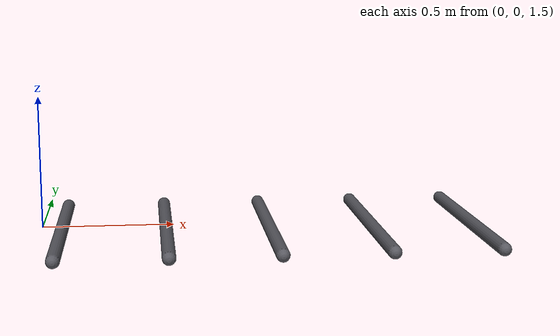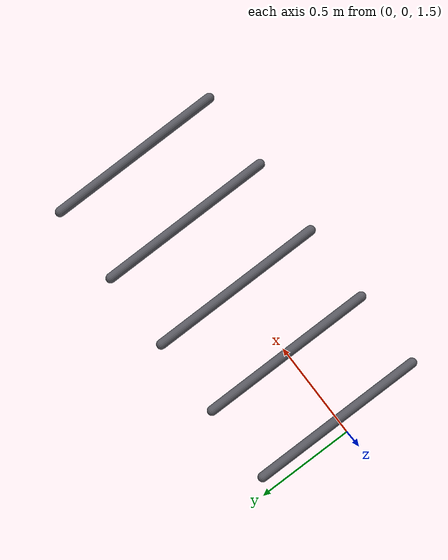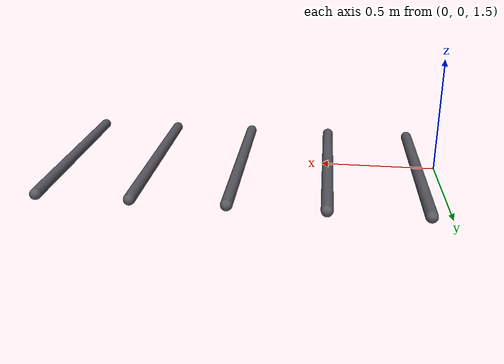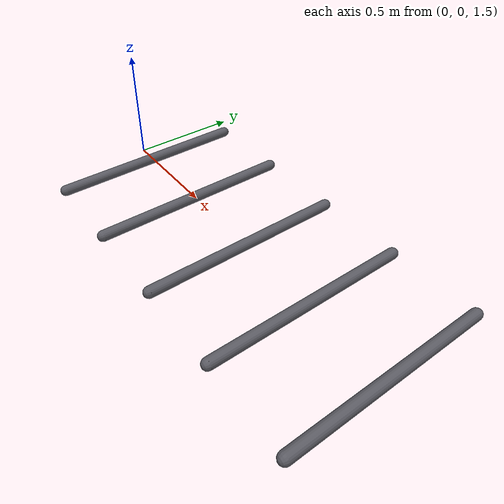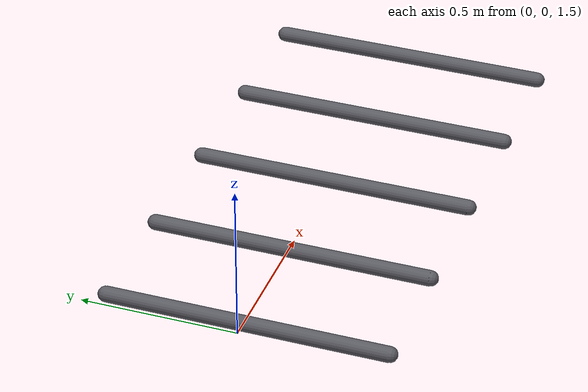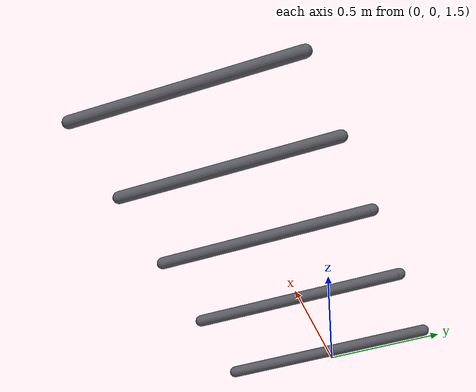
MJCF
<mujoco model="g1_29dof_with_hand_rev_1_0">
  <compiler angle="radian" meshdir="menagerie/unitree_g1/assets/"/>

  <option integrator="implicitfast" cone="elliptic" iterations="50" ls_iterations="20"/>

  <size nkey="2"/>

  <default>
    <default class="g1">
      <joint armature="0.01" frictionloss="0.3"/>
      <site size="0.01 0.005 0.005" group="5" rgba="1 0 0 1"/>
      <general biastype="affine" gainprm="500" biasprm="0 -500 1"/>
      <default class="visual">
        <geom type="mesh" contype="0" conaffinity="0" group="2" density="0" material="metal"/>
      </default>
      <default class="collision">
        <geom type="mesh" group="3"/>
        <default class="foot">
          <geom size="0.005 0 0" type="sphere" priority="1" friction="0.6"/>
        </default>
      </default>
    </default>
  </default>

  <asset>
    <material name="black" rgba="0.2 0.2 0.2 1"/>
    <material name="metal" rgba="0.7 0.7 0.7 1"/>
    <mesh name="pelvis" content_type="model/stl" file="pelvis.STL"/>
    <mesh name="pelvis_contour_link" content_type="model/stl" file="pelvis_contour_link.STL"/>
    <mesh name="left_hip_pitch_link" content_type="model/stl" file="left_hip_pitch_link.STL"/>
    <mesh name="left_hip_roll_link" content_type="model/stl" file="left_hip_roll_link.STL"/>
    <mesh name="left_hip_yaw_link" content_type="model/stl" file="left_hip_yaw_link.STL"/>
    <mesh name="left_knee_link" content_type="model/stl" file="left_knee_link.STL"/>
    <mesh name="left_ankle_pitch_link" content_type="model/stl" file="left_ankle_pitch_link.STL"/>
    <mesh name="left_ankle_roll_link" content_type="model/stl" file="left_ankle_roll_link.STL"/>
    <mesh name="right_hip_pitch_link" content_type="model/stl" file="right_hip_pitch_link.STL"/>
    <mesh name="right_hip_roll_link" content_type="model/stl" file="right_hip_roll_link.STL"/>
    <mesh name="right_hip_yaw_link" content_type="model/stl" file="right_hip_yaw_link.STL"/>
    <mesh name="right_knee_link" content_type="model/stl" file="right_knee_link.STL"/>
    <mesh name="right_ankle_pitch_link" content_type="model/stl" file="right_ankle_pitch_link.STL"/>
    <mesh name="right_ankle_roll_link" content_type="model/stl" file="right_ankle_roll_link.STL"/>
    <mesh name="waist_yaw_link" content_type="model/stl" file="waist_yaw_link_rev_1_0.STL"/>
    <mesh name="waist_roll_link" content_type="model/stl" file="waist_roll_link_rev_1_0.STL"/>
    <mesh name="torso_link" content_type="model/stl" file="torso_link_rev_1_0.STL"/>
    <mesh name="logo_link" content_type="model/stl" file="logo_link.STL"/>
    <mesh name="head_link" content_type="model/stl" file="head_link.STL"/>
    <mesh name="left_shoulder_pitch_link" content_type="model/stl" file="left_shoulder_pitch_link.STL"/>
    <mesh name="left_shoulder_roll_link" content_type="model/stl" file="left_shoulder_roll_link.STL"/>
    <mesh name="left_shoulder_yaw_link" content_type="model/stl" file="left_shoulder_yaw_link.STL"/>
    <mesh name="left_elbow_link" content_type="model/stl" file="left_elbow_link.STL"/>
    <mesh name="left_wrist_roll_link" content_type="model/stl" file="left_wrist_roll_link.STL"/>
    <mesh name="left_wrist_pitch_link" content_type="model/stl" file="left_wrist_pitch_link.STL"/>
    <mesh name="left_wrist_yaw_link" content_type="model/stl" file="left_wrist_yaw_link.STL"/>
    <mesh name="left_hand_palm_link" content_type="model/stl" file="left_hand_palm_link.STL"/>
    <mesh name="left_hand_thumb_0_link" content_type="model/stl" file="left_hand_thumb_0_link.STL"/>
    <mesh name="left_hand_thumb_1_link" content_type="model/stl" file="left_hand_thumb_1_link.STL"/>
    <mesh name="left_hand_thumb_2_link" content_type="model/stl" file="left_hand_thumb_2_link.STL"/>
    <mesh name="left_hand_middle_0_link" content_type="model/stl" file="left_hand_middle_0_link.STL"/>
    <mesh name="left_hand_middle_1_link" content_type="model/stl" file="left_hand_middle_1_link.STL"/>
    <mesh name="left_hand_index_0_link" content_type="model/stl" file="left_hand_index_0_link.STL"/>
    <mesh name="left_hand_index_1_link" content_type="model/stl" file="left_hand_index_1_link.STL"/>
    <mesh name="right_shoulder_pitch_link" content_type="model/stl" file="right_shoulder_pitch_link.STL"/>
    <mesh name="right_shoulder_roll_link" content_type="model/stl" file="right_shoulder_roll_link.STL"/>
    <mesh name="right_shoulder_yaw_link" content_type="model/stl" file="right_shoulder_yaw_link.STL"/>
    <mesh name="right_elbow_link" content_type="model/stl" file="right_elbow_link.STL"/>
    <mesh name="right_wrist_roll_link" content_type="model/stl" file="right_wrist_roll_link.STL"/>
    <mesh name="right_wrist_pitch_link" content_type="model/stl" file="right_wrist_pitch_link.STL"/>
    <mesh name="right_wrist_yaw_link" content_type="model/stl" file="right_wrist_yaw_link.STL"/>
    <mesh name="right_hand_palm_link" content_type="model/stl" file="right_hand_palm_link.STL"/>
    <mesh name="right_hand_thumb_0_link" content_type="model/stl" file="right_hand_thumb_0_link.STL"/>
    <mesh name="right_hand_thumb_1_link" content_type="model/stl" file="right_hand_thumb_1_link.STL"/>
    <mesh name="right_hand_thumb_2_link" content_type="model/stl" file="right_hand_thumb_2_link.STL"/>
    <mesh name="right_hand_middle_0_link" content_type="model/stl" file="right_hand_middle_0_link.STL"/>
    <mesh name="right_hand_middle_1_link" content_type="model/stl" file="right_hand_middle_1_link.STL"/>
    <mesh name="right_hand_index_0_link" content_type="model/stl" file="right_hand_index_0_link.STL"/>
    <mesh name="right_hand_index_1_link" content_type="model/stl" file="right_hand_index_1_link.STL"/>
  </asset>

  <worldbody>
    <body name="pelvis" childclass="g1" pos="0 0 0.793">
      <inertial pos="0 0 -0.07605" quat="1 0 -0.000399148 0" mass="3.813" diaginertia="0.010549 0.0093089 0.0079184"/>
      <joint name="floating_base_joint" type="free" armature="0" frictionloss="0"/>
      <geom class="collision" size="0.0294035 0.00728933" pos="0.0304304 0.0339377 -0.051962" quat="0.706852 -0.00891182 -0.00777612 0.707263" type="capsule"/>
      <site name="imu_in_pelvis" pos="0.04525 0 -0.08339"/>
      <body name="left_hip_pitch_link" pos="0 0.064452 -0.1027">
        <inertial pos="0.002741 0.047791 -0.02606" quat="0.954862 0.293964 0.0302556 0.030122" mass="1.35" diaginertia="0.00181517 0.00153422 0.00116212"/>
        <joint name="left_hip_pitch_joint" range="-2.5307 2.8798" actuatorfrcrange="-88 88" axis="0 1 0"/>
        <geom class="collision" size="0.01967 0.00852554" pos="0.0125873 0.0454484 0.0208359" quat="0.945633 0.315493 -0.0450108 0.0649417" type="capsule"/>
        <body name="left_hip_roll_link" pos="0 0.052 -0.030465" quat="0.996179 0 -0.0873386 0">
          <inertial pos="0.029812 -0.001045 -0.087934" quat="0.977808 -1.97119e-05 0.205576 -0.0403793" mass="1.52" diaginertia="0.00254986 0.00241169 0.00148755"/>
          <joint name="left_hip_roll_joint" range="-0.5236 2.9671" actuatorfrcrange="-139 139" axis="1 0 0"/>
          <geom class="collision" size="0.0245408 0.0124466" pos="0.0819322 0.0239031 -0.027932" quat="0.984423 -0.0038236 0.175642 -0.00685285" type="capsule"/>
          <body name="left_hip_yaw_link" pos="0.025001 0 -0.12412">
            <inertial pos="-0.057709 -0.010981 -0.15078" quat="0.600598 0.15832 0.223482 0.751181" mass="1.702" diaginertia="0.00776166 0.00717575 0.00160139"/>
            <joint name="left_hip_yaw_joint" range="-2.7576 2.7576" actuatorfrcrange="-88 88"/>
            <geom class="collision" size="0.0223399 0.050877" pos="-0.0319811 0.0195597 -0.0259532" quat="0.667927 0.152344 0.173167 0.707586" type="capsule"/>
            <body name="left_knee_link" pos="-0.078273 0.0021489 -0.17734" quat="0.996179 0 0.0873386 0">
              <inertial pos="0.005457 0.003964 -0.12074" quat="0.923418 -0.0327699 0.0158246 0.382067" mass="1.932" diaginertia="0.0113804 0.0112778 0.00146458"/>
              <joint name="left_knee_joint" range="-0.087267 2.8798" actuatorfrcrange="-139 139" axis="0 1 0"/>
              <geom class="collision" size="0.023851 0.0725401" pos="-0.011146 0.0292246 -0.0418017" quat="0.758488 -0.0138235 0.0293891 0.650877" type="capsule"/>
              <body name="left_ankle_pitch_link" pos="0 -9.4445e-05 -0.30001">
                <inertial pos="-0.007269 0 0.011137" quat="0.603053 0.369225 0.369225 0.603053" mass="0.074" diaginertia="1.89e-05 1.40805e-05 6.9195e-06"/>
                <joint name="left_ankle_pitch_joint" range="-0.87267 0.5236" actuatorfrcrange="-50 50" axis="0 1 0"/>
                <geom class="collision" size="0.005 0.00864362" pos="-0.00456871 0.00330835 0.00533139" quat="0.67667 0.205225 0.205225 0.67667" type="capsule"/>
                <body name="left_ankle_roll_link" pos="0 0 -0.017558">
                  <inertial pos="0.026505 0 -0.016425" quat="-0.000481092 0.728482 -0.000618967 0.685065" mass="0.608" diaginertia="0.00167218 0.0016161 0.000217621"/>
                  <joint name="left_ankle_roll_joint" range="-0.2618 0.2618" actuatorfrcrange="-50 50" axis="1 0 0"/>
                  <geom class="foot" pos="-0.05 0.025 -0.03"/>
                  <geom class="foot" pos="-0.05 -0.025 -0.03"/>
                  <geom class="foot" pos="0.12 0.03 -0.03"/>
                  <geom class="foot" pos="0.12 -0.03 -0.03"/>
                  <site name="left_foot"/>
                </body>
              </body>
            </body>
          </body>
        </body>
      </body>
      <body name="right_hip_pitch_link" pos="0 -0.064452 -0.1027">
        <inertial pos="0.002741 -0.047791 -0.02606" quat="0.954862 -0.293964 0.0302556 -0.030122" mass="1.35" diaginertia="0.00181517 0.00153422 0.00116212"/>
        <joint name="right_hip_pitch_joint" range="-2.5307 2.8798" actuatorfrcrange="-88 88" axis="0 1 0"/>
        <geom class="collision" size="0.0196703 0.0085253" pos="0.0202224 -0.00544519 -0.00898912" quat="0.945623 -0.315513 -0.0450217 -0.064969" type="capsule"/>
        <body name="right_hip_roll_link" pos="0 -0.052 -0.030465" quat="0.996179 0 -0.0873386 0">
          <inertial pos="0.029812 0.001045 -0.087934" quat="0.977808 1.97119e-05 0.205576 0.0403793" mass="1.52" diaginertia="0.00254986 0.00241169 0.00148755"/>
          <joint name="right_hip_roll_joint" range="-2.9671 0.5236" actuatorfrcrange="-139 139" axis="1 0 0"/>
          <geom class="collision" size="0.0244311 0.0125568" pos="0.0813464 0.025047 -0.0274485" quat="0.984424 0.00379079 0.175644 0.00665538" type="capsule"/>
          <body name="right_hip_yaw_link" pos="0.025001 0 -0.12412">
            <inertial pos="-0.057709 0.010981 -0.15078" quat="0.751181 0.223482 0.15832 0.600598" mass="1.702" diaginertia="0.00776166 0.00717575 0.00160139"/>
            <joint name="right_hip_yaw_joint" range="-2.7576 2.7576" actuatorfrcrange="-88 88"/>
            <geom class="collision" size="0.0217035 0.0515128" pos="-0.029279 0.0243969 -0.0252617" quat="0.707622 0.173154 0.152355 0.66789" type="capsule"/>
            <body name="right_knee_link" pos="-0.078273 -0.0021489 -0.17734" quat="0.996179 0 0.0873386 0">
              <inertial pos="0.005457 -0.003964 -0.12074" quat="0.923439 0.0345276 0.0116333 -0.382012" mass="1.932" diaginertia="0.011374 0.0112843 0.00146452"/>
              <joint name="right_knee_joint" range="-0.087267 2.8798" actuatorfrcrange="-139 139" axis="0 1 0"/>
              <geom class="collision" size="0.0175363 0.0788535" pos="-0.0173977 0.0116045 -0.0392136" quat="0.650834 0.0293804 -0.0138194 0.758526" type="capsule"/>
              <body name="right_ankle_pitch_link" pos="0 9.4445e-05 -0.30001">
                <inertial pos="-0.007269 0 0.011137" quat="0.603053 0.369225 0.369225 0.603053" mass="0.074" diaginertia="1.89e-05 1.40805e-05 6.9195e-06"/>
                <joint name="right_ankle_pitch_joint" range="-0.87267 0.5236" actuatorfrcrange="-50 50" axis="0 1 0"/>
                <geom class="collision" size="0.005 0.00864441" pos="-0.0045702 0.00319155 0.00533153" quat="0.676681 0.205189 0.205189 0.676681" type="capsule"/>
                <body name="right_ankle_roll_link" pos="0 0 -0.017558">
                  <inertial pos="0.026505 0 -0.016425" quat="0.000481092 0.728482 0.000618967 0.685065" mass="0.608" diaginertia="0.00167218 0.0016161 0.000217621"/>
                  <joint name="right_ankle_roll_joint" range="-0.2618 0.2618" actuatorfrcrange="-50 50" axis="1 0 0"/>
                  <geom class="foot" pos="-0.05 0.025 -0.03"/>
                  <geom class="foot" pos="-0.05 -0.025 -0.03"/>
                  <geom class="foot" pos="0.12 0.03 -0.03"/>
                  <geom class="foot" pos="0.12 -0.03 -0.03"/>
                  <site name="right_foot"/>
                </body>
              </body>
            </body>
          </body>
        </body>
      </body>
      <body name="waist_yaw_link">
        <inertial pos="0.003494 0.000233 0.018034" quat="0.289697 0.591001 -0.337795 0.672821" mass="0.214" diaginertia="0.000163531 0.000107714 0.000102205"/>
        <joint name="waist_yaw_joint" range="-2.618 2.618" actuatorfrcrange="-88 88"/>
        <body name="waist_roll_link" pos="-0.0039635 0 0.044">
          <inertial pos="0 2.3e-05 0" quat="0.5 0.5 -0.5 0.5" mass="0.086" diaginertia="8.245e-06 7.079e-06 6.339e-06"/>
          <joint name="waist_roll_joint" range="-0.52 0.52" actuatorfrcrange="-50 50" axis="1 0 0"/>
          <body name="torso_link">
            <inertial pos="0.00203158 0.000339683 0.184568" quat="0.999803 -6.03319e-05 0.0198256 0.00131986" mass="7.818" diaginertia="0.121847 0.109825 0.0273735"/>
            <joint name="waist_pitch_joint" range="-0.52 0.52" actuatorfrcrange="-50 50" axis="0 1 0"/>
            <geom class="collision" size="0.0360493 0.0422094" pos="0.0446263 0.0549016 0.22954" quat="0.999986 0.00188803 0.00455224 0.00209679" type="capsule"/>
            <geom class="collision" size="0.0360009 0.0172889" pos="0.04358 0.0389224 0.434194" quat="0.99974 1.33274e-05 0.0227938 5.45395e-05" type="capsule"/>
            <site name="imu_in_torso" pos="-0.03959 -0.00224 0.14792"/>
            <body name="left_shoulder_pitch_link" pos="0.0039563 0.10022 0.24778" quat="0.990264 0.139201 1.38722e-05 -9.86868e-05">
              <inertial pos="0 0.035892 -0.011628" quat="0.654152 0.0130458 -0.326267 0.68225" mass="0.718" diaginertia="0.000465864 0.000432842 0.000406394"/>
              <joint name="left_shoulder_pitch_joint" range="-3.0892 2.6704" actuatorfrcrange="-25 25" axis="0 1 0"/>
              <geom class="collision" size="0.03 0.025" pos="0 0.04 -0.01" quat="0.707107 0 0.707107 0" type="capsule"/>
              <body name="left_shoulder_roll_link" pos="0 0.038 -0.013831" quat="0.990268 -0.139172 0 0">
                <inertial pos="-0.000227 0.00727 -0.063243" quat="0.701256 -0.0196223 -0.00710317 0.712604" mass="0.643" diaginertia="0.000691311 0.000618011 0.000388977"/>
                <joint name="left_shoulder_roll_joint" range="-1.5882 2.2515" actuatorfrcrange="-25 25" axis="1 0 0"/>
                <geom class="collision" size="0.03 0.015" pos="-0.004 0.006 -0.053" type="capsule"/>
                <body name="left_shoulder_yaw_link" pos="0 0.00624 -0.1032">
                  <inertial pos="0.010773 -0.002949 -0.072009" quat="0.716879 -0.0964829 -0.0679942 0.687134" mass="0.734" diaginertia="0.00106187 0.00103217 0.000400661"/>
                  <joint name="left_shoulder_yaw_joint" range="-2.618 2.618" actuatorfrcrange="-25 25"/>
                  <geom class="collision" size="0.0187489 0.0152872" pos="-0.0253629 0.0150278 -0.0132182" quat="0.659095 -0.127992 -0.0438299 0.739791" type="capsule"/>
                  <body name="left_elbow_link" pos="0.015783 0 -0.080518">
                    <inertial pos="0.064956 0.004454 -0.010062" quat="0.541765 0.636132 0.388821 0.388129" mass="0.6" diaginertia="0.000443035 0.000421612 0.000259353"/>
                    <joint name="left_elbow_joint" range="-1.0472 2.0944" actuatorfrcrange="-25 25" axis="0 1 0"/>
                    <geom class="collision" size="0.0183316 0.024211" pos="0.0866213 0.0151241 0.0068068" quat="0.52961 0.619007 0.416619 0.403449" type="capsule"/>
                    <body name="left_wrist_roll_link" pos="0.1 0.00188791 -0.01">
                      <inertial pos="0.0171394 0.000537591 4.8864e-07" quat="0.575338 0.411667 -0.574906 0.411094" mass="0.085445" diaginertia="5.48211e-05 4.96646e-05 3.57798e-05"/>
                      <joint name="left_wrist_roll_joint" range="-1.97222 1.97222" actuatorfrcrange="-25 25" axis="1 0 0"/>
                      <geom class="collision" size="0.0150015 0.005" pos="0.00836528 -0.0151885 0.0150001" quat="0.707079 -0.0114868 -0.706947 -0.0115218" type="capsule"/>
                      <body name="left_wrist_pitch_link" pos="0.038 0 0">
                        <inertial pos="0.0229999 -0.00111685 -0.00111658" quat="0.249998 0.661363 0.293036 0.643608" mass="0.48405" diaginertia="0.000430353 0.000429873 0.000164648"/>
                        <joint name="left_wrist_pitch_joint" range="-1.61443 1.61443" actuatorfrcrange="-5 5" axis="0 1 0"/>
                        <geom class="collision" size="0.0164117 0.00952351" pos="0.0494187 -0.0231992 -0.000433761" quat="-0.266173 0.666186 -0.257986 0.647141" type="capsule"/>
                        <body name="left_wrist_yaw_link" pos="0.046 0 0">
                          <inertial pos="0.0885506 0.00212216 -0.000374562" quat="0.487149 0.493844 0.513241 0.505358" mass="0.457415" diaginertia="0.00105989 0.000895419 0.000323842"/>
                          <joint name="left_wrist_yaw_joint" range="-1.61443 1.61443" actuatorfrcrange="-5 5"/>
                          <geom class="collision" size="0.0115384 0.005" pos="-0.00104717 0.0128156 0.0145826" quat="0.669802 -0.0137032 -0.0138587 0.742284" type="capsule"/>
                          <geom class="collision" size="0.0108392 0.0111422" pos="0.105365 0.0157685 0.0219789" quat="0.687039 -0.000524557 -0.000768415 0.72662" type="capsule"/>
                          <body name="left_hand_thumb_0_link" pos="0.067 0.003 0">
                            <inertial pos="-0.000884246 -0.00863407 0.000944293" quat="0.462991 0.643965 -0.460173 0.398986" mass="0.0862366" diaginertia="1.6546e-05 1.60058e-05 1.43741e-05"/>
                            <joint name="left_hand_thumb_0_joint" range="-1.0472 1.0472" actuatorfrcrange="-24.5 24.5" axis="0 1 0" actuatorfrclimited="true"/>
                            <geom class="collision" mesh="left_hand_thumb_0_link"/>
                            <body name="left_hand_thumb_1_link" pos="-0.0025 -0.0193 0">
                              <inertial pos="-0.000827888 -0.0354744 -0.0003809" quat="0.685598 0.705471 -0.15207 0.0956069" mass="0.0588507" diaginertia="1.28514e-05 1.22902e-05 5.9666e-06"/>
                              <joint name="left_hand_thumb_1_joint" range="-0.724312 1.0472" actuatorfrcrange="-14 14" actuatorfrclimited="true"/>
                              <geom class="collision" size="0.01 0.015 0.01" pos="-0.001 -0.032 0" type="box"/>
                              <body name="left_hand_thumb_2_link" pos="0 -0.0458 0">
                                <inertial pos="-0.00171735 -0.0262819 0.000107789" quat="0.703174 0.710977 -0.00017564 -0.00766553" mass="0.0203063" diaginertia="4.61314e-06 3.86645e-06 1.53495e-06"/>
                                <joint name="left_hand_thumb_2_joint" range="0 1.74533" actuatorfrcrange="-14 14" actuatorfrclimited="true"/>
                                <geom class="collision" mesh="left_hand_thumb_2_link"/>
                              </body>
                            </body>
                          </body>
                          <body name="left_hand_middle_0_link" pos="0.1192 0.0046 -0.0285">
                            <inertial pos="0.0354744 0.000827888 0.0003809" quat="0.391313 0.552395 0.417187 0.606373" mass="0.0588507" diaginertia="1.28514e-05 1.22902e-05 5.9666e-06"/>
                            <joint name="left_hand_middle_0_joint" range="-1.5708 0" actuatorfrcrange="-14 14" actuatorfrclimited="true"/>
                            <geom class="collision" mesh="left_hand_middle_0_link"/>
                            <body name="left_hand_middle_1_link" pos="0.0458 0 0">
                              <inertial pos="0.0262819 0.00171735 -0.000107789" quat="0.502612 0.491799 0.502639 0.502861" mass="0.0203063" diaginertia="4.61314e-06 3.86645e-06 1.53495e-06"/>
                              <joint name="left_hand_middle_1_joint" range="-1.74533 0" actuatorfrcrange="-14 14" actuatorfrclimited="true"/>
                              <geom class="collision" mesh="left_hand_middle_1_link"/>
                            </body>
                          </body>
                          <body name="left_hand_index_0_link" pos="0.1192 0.0046 0.0285">
                            <inertial pos="0.0354744 0.000827888 0.0003809" quat="0.391313 0.552395 0.417187 0.606373" mass="0.0588507" diaginertia="1.28514e-05 1.22902e-05 5.9666e-06"/>
                            <joint name="left_hand_index_0_joint" range="-1.5708 0" actuatorfrcrange="-14 14" actuatorfrclimited="true"/>
                            <geom class="collision" mesh="left_hand_index_0_link"/>
                            <body name="left_hand_index_1_link" pos="0.0458 0 0">
                              <inertial pos="0.0262819 0.00171735 -0.000107789" quat="0.502612 0.491799 0.502639 0.502861" mass="0.0203063" diaginertia="4.61314e-06 3.86645e-06 1.53495e-06"/>
                              <joint name="left_hand_index_1_joint" range="-1.74533 0" actuatorfrcrange="-14 14" actuatorfrclimited="true"/>
                              <geom class="collision" mesh="left_hand_index_1_link"/>
                            </body>
                          </body>
                        </body>
                      </body>
                    </body>
                  </body>
                </body>
              </body>
            </body>
            <body name="right_shoulder_pitch_link" pos="0.0039563 -0.10021 0.24778" quat="0.990264 -0.139201 1.38722e-05 9.86868e-05">
              <inertial pos="0 -0.035892 -0.011628" quat="0.68225 -0.326267 0.0130458 0.654152" mass="0.718" diaginertia="0.000465864 0.000432842 0.000406394"/>
              <joint name="right_shoulder_pitch_joint" range="-3.0892 2.6704" actuatorfrcrange="-25 25" axis="0 1 0"/>
              <geom class="collision" size="0.03 0.025" pos="0 -0.04 -0.01" quat="0.707107 0 0.707107 0" type="capsule"/>
              <body name="right_shoulder_roll_link" pos="0 -0.038 -0.013831" quat="0.990268 0.139172 0 0">
                <inertial pos="-0.000227 -0.00727 -0.063243" quat="0.712604 -0.00710317 -0.0196223 0.701256" mass="0.643" diaginertia="0.000691311 0.000618011 0.000388977"/>
                <joint name="right_shoulder_roll_joint" range="-2.2515 1.5882" actuatorfrcrange="-25 25" axis="1 0 0"/>
                <geom class="collision" size="0.03 0.015" pos="-0.004 -0.006 -0.053" type="capsule"/>
                <body name="right_shoulder_yaw_link" pos="0 -0.00624 -0.1032">
                  <inertial pos="0.010773 0.002949 -0.072009" quat="0.687134 -0.0679942 -0.0964829 0.716879" mass="0.734" diaginertia="0.00106187 0.00103217 0.000400661"/>
                  <joint name="right_shoulder_yaw_joint" range="-2.618 2.618" actuatorfrcrange="-25 25"/>
                  <geom class="collision" size="0.017651 0.0163845" pos="-0.0217855 0.0208788 -0.00843132" quat="0.739753 -0.0438741 -0.127992 0.659135" type="capsule"/>
                  <body name="right_elbow_link" pos="0.015783 0 -0.080518">
                    <inertial pos="0.064956 -0.004454 -0.010062" quat="0.388129 0.388821 0.636132 0.541765" mass="0.6" diaginertia="0.000443035 0.000421612 0.000259353"/>
                    <joint name="right_elbow_joint" range="-1.0472 2.0944" actuatorfrcrange="-25 25" axis="0 1 0"/>
                    <geom class="collision" size="0.017878 0.024665" pos="0.0743601 0.0202075 0.00462594" quat="0.403481 0.416603 0.619021 0.529582" type="capsule"/>
                    <body name="right_wrist_roll_link" pos="0.1 -0.00188791 -0.01">
                      <inertial pos="0.0171394 -0.000537591 4.8864e-07" quat="0.411667 0.575338 -0.411094 0.574906" mass="0.085445" diaginertia="5.48211e-05 4.96646e-05 3.57798e-05"/>
                      <joint name="right_wrist_roll_joint" range="-1.97222 1.97222" actuatorfrcrange="-25 25" axis="1 0 0"/>
                      <geom class="collision" size="0.015001 0.005" pos="0.00936694 -0.0156037 0.0150005" quat="0.707063 0.0115113 -0.706963 0.0115129" type="capsule"/>
                      <body name="right_wrist_pitch_link" pos="0.038 0 0">
                        <inertial pos="0.0229999 0.00111685 -0.00111658" quat="0.643608 0.293036 0.661363 0.249998" mass="0.48405" diaginertia="0.000430353 0.000429873 0.000164648"/>
                        <joint name="right_wrist_pitch_joint" range="-1.61443 1.61443" actuatorfrcrange="-5 5" axis="0 1 0"/>
                        <geom class="collision" size="0.0163292 0.00960588" pos="0.0494023 -8.73699e-05 0.022074" quat="0.273592 0.663182 0.265621 0.644037" type="capsule"/>
                        <body name="right_wrist_yaw_link" pos="0.046 0 0">
                          <inertial pos="0.0885506 -0.00212216 -0.000374562" quat="0.505358 0.513241 0.493844 0.487149" mass="0.457415" diaginertia="0.00105989 0.000895419 0.000323842"/>
                          <joint name="right_wrist_yaw_joint" range="-1.61443 1.61443" actuatorfrcrange="-5 5"/>
                          <geom class="collision" size="0.0115385 0.005" pos="0.00172518 0.0141679 0.0146292" quat="0.742259 -0.0139514 -0.0137896 0.669826" type="capsule"/>
                          <geom class="collision" size="0.0104951 0.0114203" pos="0.106638 0.00551502 0.0219241" quat="0.72662 0.000768401 0.000524545 0.687039" type="capsule"/>
                          <body name="right_hand_thumb_0_link" pos="0.067 -0.003 0">
                            <inertial pos="-0.000884246 0.00863407 0.000944293" quat="0.643965 0.462991 -0.398986 0.460173" mass="0.0862366" diaginertia="1.6546e-05 1.60058e-05 1.43741e-05"/>
                            <joint name="right_hand_thumb_0_joint" range="-1.0472 1.0472" actuatorfrcrange="-24.5 24.5" axis="0 1 0" actuatorfrclimited="true"/>
                            <geom class="collision" mesh="right_hand_thumb_0_link"/>
                            <body name="right_hand_thumb_1_link" pos="-0.0025 0.0193 0">
                              <inertial pos="-0.000827888 0.0354744 -0.0003809" quat="0.705471 0.685598 -0.0956069 0.15207" mass="0.0588507" diaginertia="1.28514e-05 1.22902e-05 5.9666e-06"/>
                              <joint name="right_hand_thumb_1_joint" range="-1.0472 0.724312" actuatorfrcrange="-14 14" actuatorfrclimited="true"/>
                              <geom class="collision" size="0.01 0.015 0.01" pos="-0.001 0.032 0" type="box"/>
                              <body name="right_hand_thumb_2_link" pos="0 0.0458 0">
                                <inertial pos="-0.00171735 0.0262819 0.000107789" quat="0.710977 0.703174 0.00766553 0.00017564" mass="0.0203063" diaginertia="4.61314e-06 3.86645e-06 1.53495e-06"/>
                                <joint name="right_hand_thumb_2_joint" range="-1.74533 0" actuatorfrcrange="-14 14" actuatorfrclimited="true"/>
                                <geom class="collision" mesh="right_hand_thumb_2_link"/>
                              </body>
                            </body>
                          </body>
                          <body name="right_hand_middle_0_link" pos="0.1192 -0.0046 -0.0285">
                            <inertial pos="0.0354744 -0.000827888 0.0003809" quat="0.606373 0.417187 0.552395 0.391313" mass="0.0588507" diaginertia="1.28514e-05 1.22902e-05 5.9666e-06"/>
                            <joint name="right_hand_middle_0_joint" range="0 1.5708" actuatorfrcrange="-14 14" actuatorfrclimited="true"/>
                            <geom class="collision" mesh="right_hand_middle_0_link"/>
                            <body name="right_hand_middle_1_link" pos="0.0458 0 0">
                              <inertial pos="0.0262819 -0.00171735 -0.000107789" quat="0.502861 0.502639 0.491799 0.502612" mass="0.0203063" diaginertia="4.61314e-06 3.86645e-06 1.53495e-06"/>
                              <joint name="right_hand_middle_1_joint" range="0 1.74533" actuatorfrcrange="-14 14" actuatorfrclimited="true"/>
                              <geom class="collision" mesh="right_hand_middle_1_link"/>
                            </body>
                          </body>
                          <body name="right_hand_index_0_link" pos="0.1192 -0.0046 0.0285">
                            <inertial pos="0.0354744 -0.000827888 0.0003809" quat="0.606373 0.417187 0.552395 0.391313" mass="0.0588507" diaginertia="1.28514e-05 1.22902e-05 5.9666e-06"/>
                            <joint name="right_hand_index_0_joint" range="0 1.5708" actuatorfrcrange="-14 14" actuatorfrclimited="true"/>
                            <geom class="collision" mesh="right_hand_index_0_link"/>
                            <body name="right_hand_index_1_link" pos="0.0458 0 0">
                              <inertial pos="0.0262819 -0.00171735 -0.000107789" quat="0.502861 0.502639 0.491799 0.502612" mass="0.0203063" diaginertia="4.61314e-06 3.86645e-06 1.53495e-06"/>
                              <joint name="right_hand_index_1_joint" range="0 1.74533" actuatorfrcrange="-14 14" actuatorfrclimited="true"/>
                              <geom class="collision" mesh="right_hand_index_1_link"/>
                            </body>
                          </body>
                        </body>
                      </body>
                    </body>
                  </body>
                </body>
              </body>
            </body>
          </body>
        </body>
      </body>
    </body>
    <body name="bar0" pos="0.0706315 0 1.48574">
      <geom name="bar0_geom" size="0.025 0.45" quat="0.707107 0.707107 0 0" type="capsule" conaffinity="6" condim="4" friction="1.4 0.02" rgba="0.35 0.35 0.38 1" density="0"/>
    </body>
    <body name="bar1" pos="0.470632 0 1.48574">
      <geom name="bar1_geom" size="0.025 0.45" quat="0.707107 0.707107 0 0" type="capsule" conaffinity="6" condim="4" friction="1.4 0.02" rgba="0.35 0.35 0.38 1" density="0"/>
    </body>
    <body name="bar2" pos="0.870632 0 1.48574">
      <geom name="bar2_geom" size="0.025 0.45" quat="0.707107 0.707107 0 0" type="capsule" conaffinity="6" condim="4" friction="1.4 0.02" rgba="0.35 0.35 0.38 1" density="0"/>
    </body>
    <body name="bar3" pos="1.27063 0 1.48574">
      <geom name="bar3_geom" size="0.025 0.45" quat="0.707107 0.707107 0 0" type="capsule" conaffinity="6" condim="4" friction="1.4 0.02" rgba="0.35 0.35 0.38 1" density="0"/>
    </body>
    <body name="bar4" pos="1.67063 0 1.48574">
      <geom name="bar4_geom" size="0.025 0.45" quat="0.707107 0.707107 0 0" type="capsule" conaffinity="6" condim="4" friction="1.4 0.02" rgba="0.35 0.35 0.38 1" density="0"/>
    </body>
  </worldbody>

  <equality>
    <joint name="left_wrist_pitch_lock" joint1="left_wrist_pitch_joint" solref="0.002" solimp="0.99 0.999 0.0001"/>
    <joint name="left_wrist_yaw_lock" joint1="left_wrist_yaw_joint" solref="0.002" solimp="0.99 0.999 0.0001"/>
    <joint name="right_wrist_pitch_lock" joint1="right_wrist_pitch_joint" solref="0.002" solimp="0.99 0.999 0.0001"/>
    <joint name="right_wrist_yaw_lock" joint1="right_wrist_yaw_joint" solref="0.002" solimp="0.99 0.999 0.0001"/>
  </equality>

  <actuator>
    <general name="left_hip_pitch_joint" class="g1" joint="left_hip_pitch_joint" ctrlrange="-2.5307 2.8798"/>
    <general name="left_hip_roll_joint" class="g1" joint="left_hip_roll_joint" ctrlrange="-0.5236 2.9671"/>
    <general name="left_hip_yaw_joint" class="g1" joint="left_hip_yaw_joint" ctrlrange="-2.7576 2.7576"/>
    <general name="left_knee_joint" class="g1" joint="left_knee_joint" ctrlrange="-0.087267 2.8798"/>
    <general name="left_ankle_pitch_joint" class="g1" joint="left_ankle_pitch_joint" ctrlrange="-0.87267 0.5236"/>
    <general name="left_ankle_roll_joint" class="g1" joint="left_ankle_roll_joint" ctrlrange="-0.2618 0.2618"/>
    <general name="right_hip_pitch_joint" class="g1" joint="right_hip_pitch_joint" ctrlrange="-2.5307 2.8798"/>
    <general name="right_hip_roll_joint" class="g1" joint="right_hip_roll_joint" ctrlrange="-2.9671 0.5236"/>
    <general name="right_hip_yaw_joint" class="g1" joint="right_hip_yaw_joint" ctrlrange="-2.7576 2.7576"/>
    <general name="right_knee_joint" class="g1" joint="right_knee_joint" ctrlrange="-0.087267 2.8798"/>
    <general name="right_ankle_pitch_joint" class="g1" joint="right_ankle_pitch_joint" ctrlrange="-0.87267 0.5236"/>
    <general name="right_ankle_roll_joint" class="g1" joint="right_ankle_roll_joint" ctrlrange="-0.2618 0.2618"/>
    <general name="waist_yaw_joint" class="g1" joint="waist_yaw_joint" ctrlrange="-2.618 2.618"/>
    <general name="waist_roll_joint" class="g1" joint="waist_roll_joint" ctrlrange="-0.52 0.52"/>
    <general name="waist_pitch_joint" class="g1" joint="waist_pitch_joint" ctrlrange="-0.52 0.52"/>
    <general name="left_shoulder_pitch_joint" class="g1" joint="left_shoulder_pitch_joint" ctrlrange="-3.0892 2.6704"/>
    <general name="left_shoulder_roll_joint" class="g1" joint="left_shoulder_roll_joint" ctrlrange="-1.5882 2.2515"/>
    <general name="left_shoulder_yaw_joint" class="g1" joint="left_shoulder_yaw_joint" ctrlrange="-2.618 2.618"/>
    <general name="left_elbow_joint" class="g1" joint="left_elbow_joint" ctrlrange="-1.0472 2.0944"/>
    <general name="left_wrist_roll_joint" class="g1" joint="left_wrist_roll_joint" ctrlrange="-1.97222 1.97222"/>
    <general name="left_wrist_pitch_joint" class="g1" joint="left_wrist_pitch_joint" ctrlrange="-1.61443 1.61443"/>
    <general name="left_wrist_yaw_joint" class="g1" joint="left_wrist_yaw_joint" ctrlrange="-1.61443 1.61443"/>
    <general name="left_hand_thumb_0_joint" class="g1" joint="left_hand_thumb_0_joint" ctrlrange="-1.0472 1.0472"/>
    <general name="left_hand_thumb_1_joint" class="g1" joint="left_hand_thumb_1_joint" ctrlrange="-0.724312 1.0472"/>
    <general name="left_hand_thumb_2_joint" class="g1" joint="left_hand_thumb_2_joint" ctrlrange="0 1.74533"/>
    <general name="left_hand_middle_0_joint" class="g1" joint="left_hand_middle_0_joint" ctrlrange="-1.5708 0"/>
    <general name="left_hand_middle_1_joint" class="g1" joint="left_hand_middle_1_joint" ctrlrange="-1.74533 0"/>
    <general name="left_hand_index_0_joint" class="g1" joint="left_hand_index_0_joint" ctrlrange="-1.5708 0"/>
    <general name="left_hand_index_1_joint" class="g1" joint="left_hand_index_1_joint" ctrlrange="-1.74533 0"/>
    <general name="right_shoulder_pitch_joint" class="g1" joint="right_shoulder_pitch_joint" ctrlrange="-3.0892 2.6704"/>
    <general name="right_shoulder_roll_joint" class="g1" joint="right_shoulder_roll_joint" ctrlrange="-2.2515 1.5882"/>
    <general name="right_shoulder_yaw_joint" class="g1" joint="right_shoulder_yaw_joint" ctrlrange="-2.618 2.618"/>
    <general name="right_elbow_joint" class="g1" joint="right_elbow_joint" ctrlrange="-1.0472 2.0944"/>
    <general name="right_wrist_roll_joint" class="g1" joint="right_wrist_roll_joint" ctrlrange="-1.97222 1.97222"/>
    <general name="right_wrist_pitch_joint" class="g1" joint="right_wrist_pitch_joint" ctrlrange="-1.61443 1.61443"/>
    <general name="right_wrist_yaw_joint" class="g1" joint="right_wrist_yaw_joint" ctrlrange="-1.61443 1.61443"/>
    <general name="right_hand_thumb_0_joint" class="g1" joint="right_hand_thumb_0_joint" ctrlrange="-1.0472 1.0472"/>
    <general name="right_hand_thumb_1_joint" class="g1" joint="right_hand_thumb_1_joint" ctrlrange="-1.0472 0.724312"/>
    <general name="right_hand_thumb_2_joint" class="g1" joint="right_hand_thumb_2_joint" ctrlrange="-1.74533 0"/>
    <general name="right_hand_index_0_joint" class="g1" joint="right_hand_index_0_joint" ctrlrange="0 1.5708"/>
    <general name="right_hand_index_1_joint" class="g1" joint="right_hand_index_1_joint" ctrlrange="0 1.74533"/>
    <general name="right_hand_middle_0_joint" class="g1" joint="right_hand_middle_0_joint" ctrlrange="0 1.5708"/>
    <general name="right_hand_middle_1_joint" class="g1" joint="right_hand_middle_1_joint" ctrlrange="0 1.74533"/>
  </actuator>

  <sensor>
    <gyro site="imu_in_torso" name="imu-torso-angular-velocity" cutoff="34.9" noise="0.0005"/>
    <accelerometer site="imu_in_torso" name="imu-torso-linear-acceleration" cutoff="157" noise="0.01"/>
    <gyro site="imu_in_pelvis" name="imu-pelvis-angular-velocity" cutoff="34.9" noise="0.0005"/>
    <accelerometer site="imu_in_pelvis" name="imu-pelvis-linear-acceleration" cutoff="157" noise="0.01"/>
  </sensor>

  <keyframe>
    <key name="stand" qpos="0 0 0.79 1 0 0 0 0 0 0 0 0 0 0 0 0 0 0 0 0 0 0 0.2 0.2 0 1.28 0 0 0 0 1.05 0 0 0 0 0 0.2 -0.2 0 1.28 0 0 0 0 -1.05 0 0 0 0 0" ctrl="0 0 0 0 0 0 0 0 0 0 0 0 0 0 0 0.2 0.2 0 1.28 0 0 0 0 1.05 0 0 0 0 0 0.2 -0.2 0 1.28 0 0 0 0 -1.05 0 0 0 0 0"/>
    <key name="hang" qpos="0.00122764 0.0852777 0.799151 0.9994 -0.0283853 0.0147551 -0.0132712 -0.801591 0.0509498 -0.000470556 1.19704 -0.599631 5.07281e-06 -0.801628 -0.0475603 -0.00111812 1.19707 -0.599631 1.63035e-05 -0.00254656 -0.00629201 -0.0412733 -2.74933 1.52719 -1.20173 0.536107 0.11074 4.12194e-05 1.58061e-05 0.850927 0.2742 1.56227 -0.939412 -1.40936 -1.1395 -1.40413 -2.7839 -1.53163 1.17064 0.93543 -0.0872622 6.86598e-05 -5.44546e-05 -0.812739 0.759527 -1.54936 1.0894 1.39054 0.653715 1.39495" ctrl="-0.801591 0.0509498 -0.000470556 1.19704 -0.599631 5.07281e-06 -0.801628 -0.0475603 -0.00111812 1.19707 -0.599631 1.63035e-05 -0.00254656 -0.00629201 -0.0412733 -2.74933 1.52719 -1.20173 0.536107 0.11074 4.12194e-05 1.58061e-05 0.845614 0.945098 1.57516 -1.26842 -1.40935 -1.26842 -1.40935 -2.7839 -1.53163 1.17064 0.93543 -0.0872622 6.86598e-05 -5.44546e-05 -0.845614 -0.945098 -1.57516 1.26842 1.40935 1.26842 1.40935"/>
  </keyframe>
</mujoco>
